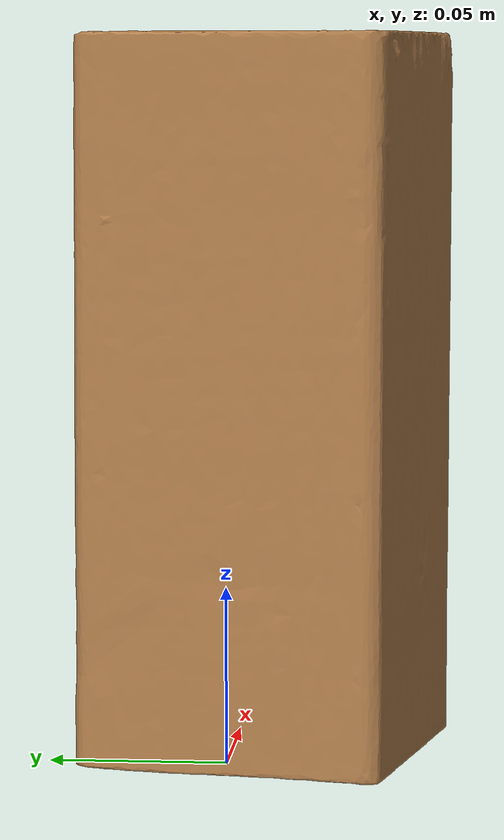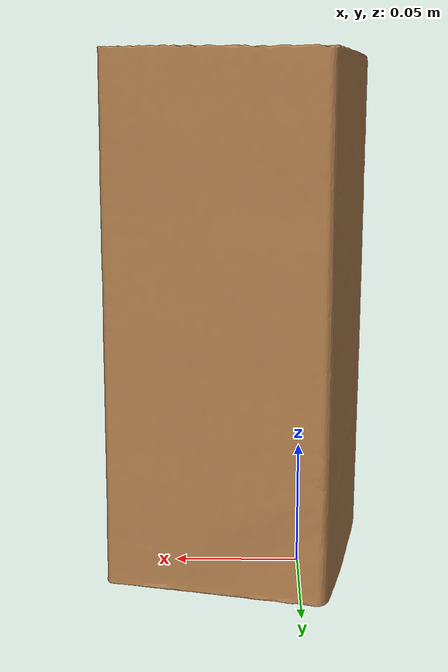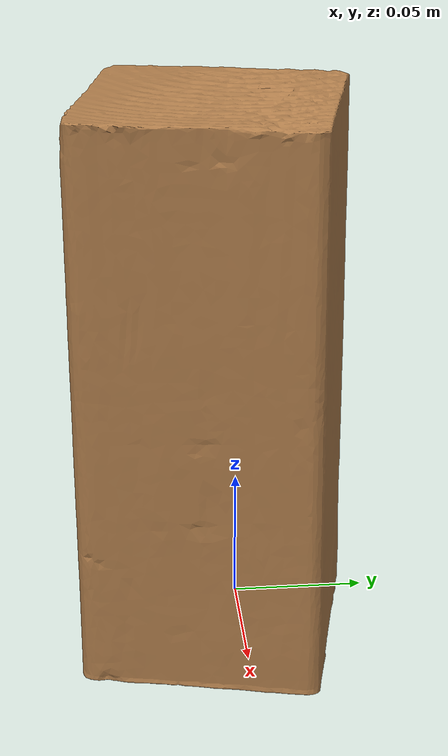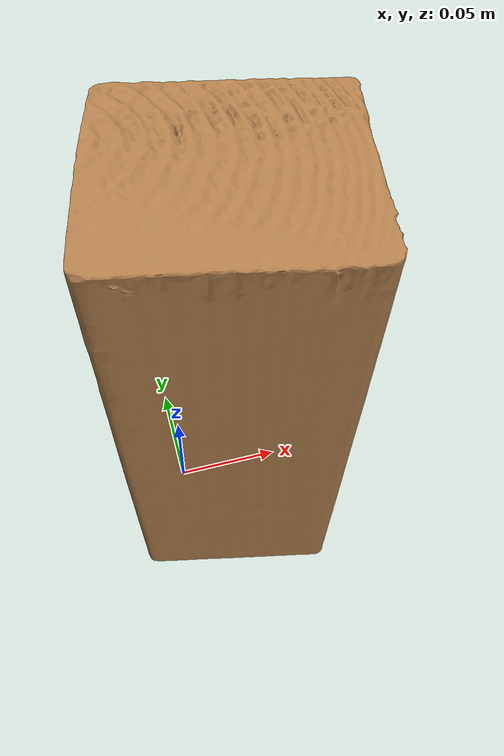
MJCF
<mujoco model="wood_block">
  <compiler angle="radian" meshdir="assets" texturedir="assets"/>
    <default>
        <default class="ycb_col">
            <geom contype="1" conaffinity="1" group="3" rgba=".4 .5 .6 1"/>
        </default>
        <default class="ycb_viz">
            <geom contype="0" conaffinity="0" type="mesh" mass="0"/>
        </default>
    </default>
  <asset>
    <texture type="2d" name="wood_block_tex" file="texture_map.png"/>
    <material name="wood_block_mat" texture="wood_block_tex" specular="0.5" shininess="0.5"/>
    <mesh file="textured.obj" name="wood_block"/>
    <mesh file="textured_collision_0.obj" name="wood_block_collision_0"/>
  </asset>
  <worldbody>
      <geom material="wood_block_mat" mesh="wood_block" class="ycb_viz"/>
      <geom class="ycb_col" mesh="wood_block_collision_0" conaffinity="1" condim="4" friction="0.1 0.1 0.1" mass="0.729" rgba="1 1 1 1" solimp="0.99 0.99 0.01" solref=".001 0.1" type="mesh" group="3"/>
  </worldbody>
</mujoco>
